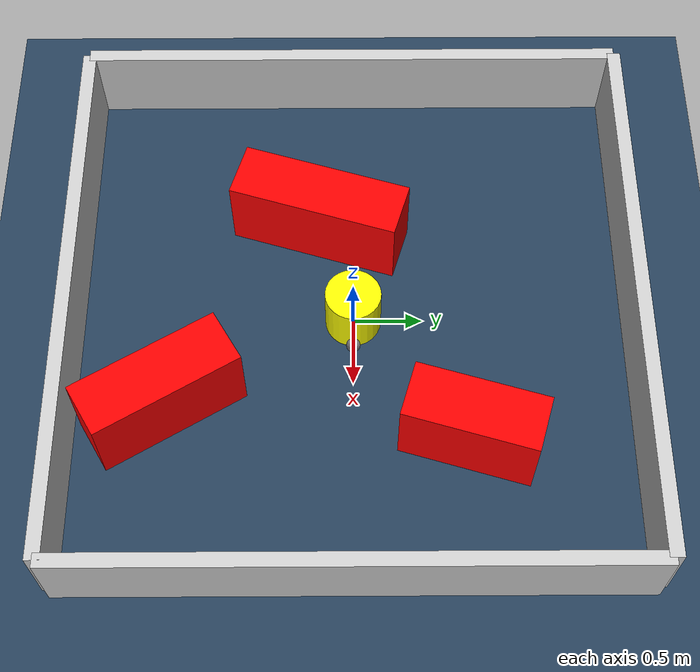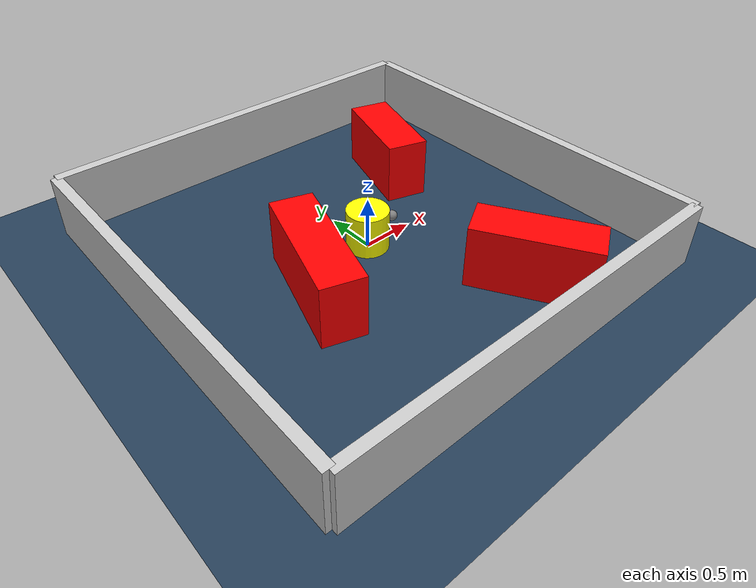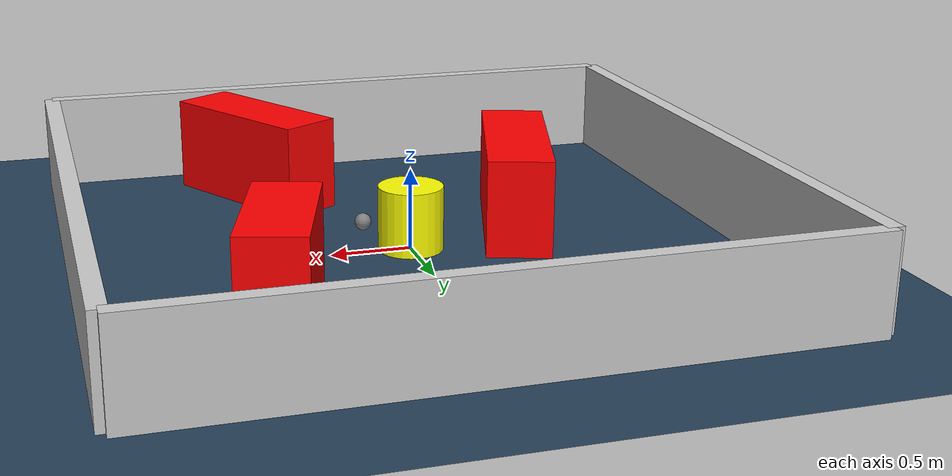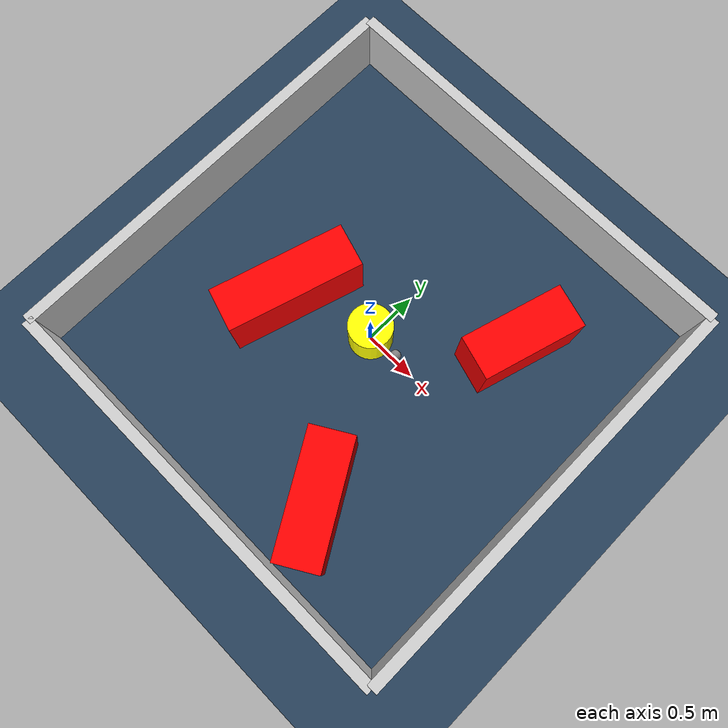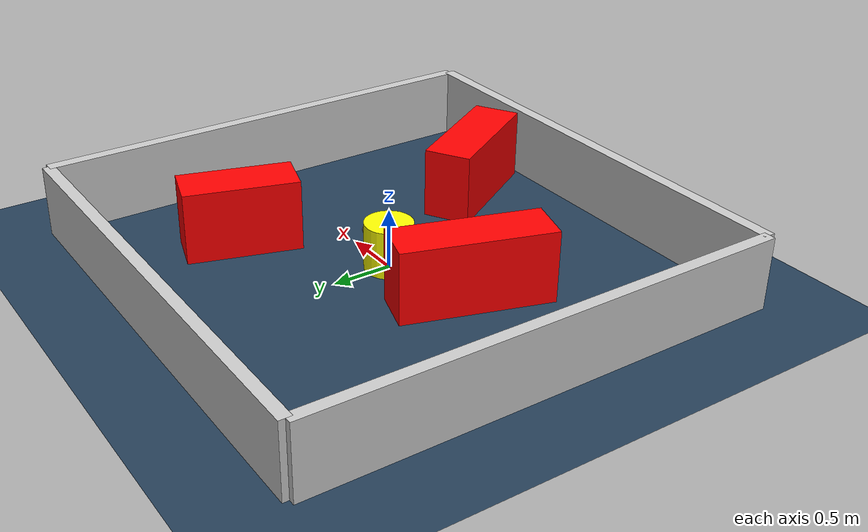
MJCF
<?xml version="1.0" ?>
<mujoco model="generated_environment">
  <option timestep="0.01" integrator="RK4" cone="elliptic"/>
  <default>
    <geom density="1"/>
  </default>
  <asset>
    <texture builtin="gradient" height="3072" rgb1="0.3 0.5 0.7" rgb2="0 0 0" type="skybox" width="512"/>
    <texture builtin="checker" height="300" mark="edge" markrgb="0.8 0.8 0.8" name="groundplane" rgb1="0.2 0.3 0.4" rgb2="0.1 0.2 0.3" type="2d" width="300"/>
    <material name="groundplane" reflectance="0.2" texrepeat="5 5" texture="groundplane" texuniform="true"/>
    <material name="robot" rgba="0.0 1.0 0.0 1"/>
  </asset>
  <worldbody>
    <light dir="0 0 -1" directional="true" pos="0 0 1.5"/>
    <geom condim="4" friction="1.0 0.005 0.001" material="groundplane" name="floor" size="0 0 0.05" type="plane"/>
    <body name="walls">
      <geom name="wall_1" condim="4" pos="-2.0 0.0 0.3" rgba="0.800000011920929 0.800000011920929 0.800000011920929 1.0" size="0.05 2.0 0.3" type="box"/>
      <geom name="wall_2" condim="4" pos="2.0 0.0 0.3" rgba="0.800000011920929 0.800000011920929 0.800000011920929 1.0" size="0.05 2.0 0.3" type="box"/>
      <geom name="wall_3" condim="4" pos="0.0 -2.0 0.3" rgba="0.800000011920929 0.800000011920929 0.800000011920929 1.0" size="2.0 0.05 0.3" type="box"/>
      <geom name="wall_4" condim="4" pos="0.0 2.0 0.3" rgba="0.800000011920929 0.800000011920929 0.800000011920929 1.0" size="2.0 0.05 0.3" type="box"/>
    </body>
    <body name="robot">
      <joint name="joint_x" type="slide" pos="0 0 0" axis="1 0 0"/>
      <joint name="joint_y" type="slide" pos="0 0 0" axis="0 1 0"/>
      <geom name="robot" type="sphere" pos="0.3 0.0 0.2" size="0.05" mass="5." friction="1.0 0.005 0.0001" condim="4" rgba="0.5 0.5 0.5 1.0"/>
      <site name="sensor_ball"/>
    </body>
    <body name="obstacle_movable_1">
      <geom name="obstacle_movable_1" condim="4" pos="0.0 0.0 0.2" euler="0 0 0.0" friction="1.0 0.005 0.001" rgba="1.0 1.0 0.0 1.0" size="0.2 0.2 0.0" type="cylinder" mass="0.1"/>
      <joint type="free"/>
    </body>
    <body name="obstacle_2_static">
      <geom name="obstacle_2_static" condim="4" pos="-0.7592196914430471 -0.23816528394242087 0.3" euler="0 0 72.83863406852592" friction="1.0 0.005 0.001" rgba="1 0 0 1" size="0.6186801885147916 0.2 0.3" type="box"/>
    </body>
    <body name="obstacle_3_static">
      <geom name="obstacle_3_static" condim="4" pos="0.9615103863377568 0.8109127043662514 0.3" euler="0 0 253.37957071720123" friction="1.0 0.005 0.001" rgba="1 0 0 1" size="0.4721397064832001 0.2 0.3" type="box"/>
    </body>
    <body name="obstacle_4_static">
      <geom name="obstacle_4_static" condim="4" pos="0.7064398438328061 -1.3300822470240177 0.3" euler="0 0 120.62555594697469" friction="1.0 0.005 0.001" rgba="1 0 0 1" size="0.5524764049134221 0.2 0.3" type="box"/>
    </body>
  </worldbody>
  <actuator>
    <motor name="actuator_x" joint="joint_x" gear="1" ctrlrange="-1 1"/>
    <motor name="actuator_y" joint="joint_y" gear="1" ctrlrange="-1 1"/>
  </actuator>
</mujoco>
